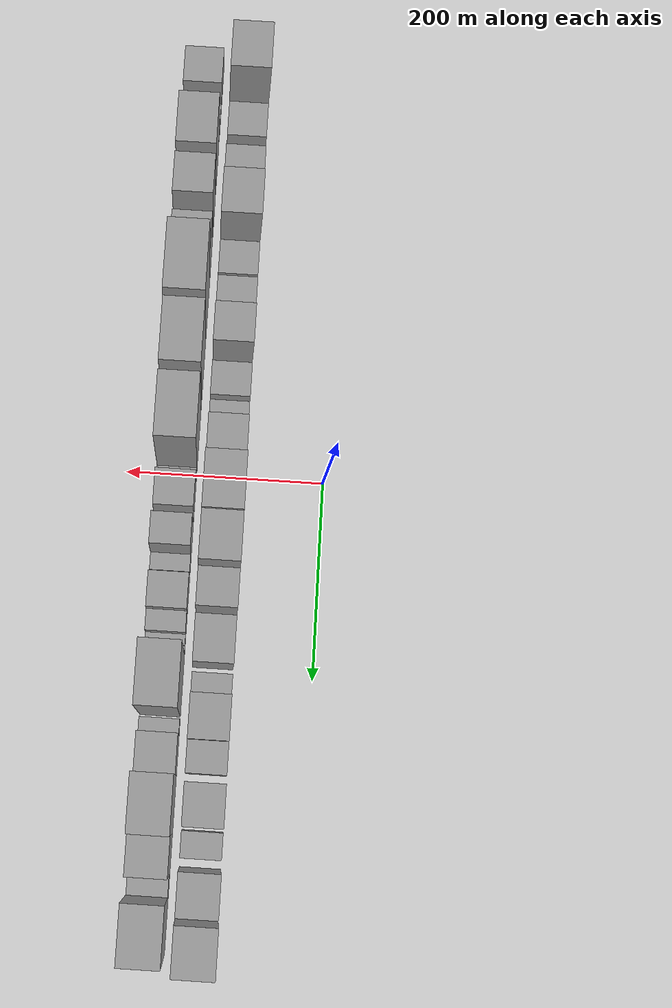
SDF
<sdf version="1.6">
 <world name="default">
  <scene>
   <sky><clouds><speed>12</speed></clouds></sky>
   <ambient>0.4 0.4 0.4 1</ambient>
   <background>0.7 0.7 0.7 1</background>
   <shadows>1</shadows>
  </scene>
  <gravity>0 0 -9.8066</gravity>
  <magnetic_field>6e-06 2.3e-05 -4.2e-05</magnetic_field>
  <physics default="0" name="default_physics" type="ode">
   <ode>
    <solver>
     <type>quick</type>
     <iters>10</iters>
     <sor>1.0</sor>
     <use_dynamic_moi_rescaling>0</use_dynamic_moi_rescaling>
    </solver>
    <constraints>
     <cfm>0</cfm>
     <erp>0.2</erp>
     <contact_max_correcting_vel>100</contact_max_correcting_vel>
     <contact_surface_layer>0.001</contact_surface_layer>
    </constraints>
   </ode>
   <max_step_size>0.004</max_step_size>
   <real_time_factor>1</real_time_factor>
   <real_time_update_rate>250</real_time_update_rate>
  </physics>
  <light name="sun" type="directional">
   <pose>0 0 10 0 0 0</pose>
   <diffuse>0.8 0.8 0.8 1</diffuse>
   <specular>0.2 0.2 0.2 1</specular>
   <attenuation>
    <range>1000</range>
    <constant>0.9</constant>
    <linear>0.01</linear>
    <quadratic>0.001</quadratic>
   </attenuation>
   <direction>-0.5 0.1 -0.9</direction>
  </light>
  <model name="building_1">
   <static>1</static>
   <pose>100.0000 -433.0346 0 0.000000 0.000000 0.000000</pose>
   <link name="link">
    <pose>0 0 12.00 0 0 0</pose>
    <collision name="collision"><geometry><box><size>40.0000 9.9308 24.0000</size></box></geometry></collision>
    <visual name="visual">
     <cast_shadows>0</cast_shadows>
     <geometry><box><size>40.0000 9.9308 24.0000</size></box></geometry>
     <material>
      <script>
       <uri>model://grey_wall/materials/scripts</uri>
       <uri>model://grey_wall/materials/textures</uri>
       <name>vrc/grey_wall</name>
      </script>
     </material>
    </visual>
   </link>
  </model>
  <model name="building_2">
   <static>1</static>
   <pose>100.0000 -404.1415 0 0.000000 0.000000 0.000000</pose>
   <link name="link">
    <pose>0 0 75.00 0 0 0</pose>
    <collision name="collision"><geometry><box><size>40.0000 47.8553 150.0000</size></box></geometry></collision>
    <visual name="visual">
     <cast_shadows>0</cast_shadows>
     <geometry><box><size>40.0000 47.8553 150.0000</size></box></geometry>
     <material>
      <script>
       <uri>model://grey_wall/materials/scripts</uri>
       <uri>model://grey_wall/materials/textures</uri>
       <name>vrc/grey_wall</name>
      </script>
     </material>
    </visual>
   </link>
  </model>
  <model name="building_3">
   <static>1</static>
   <pose>100.0000 -361.9677 0 0.000000 0.000000 0.000000</pose>
   <link name="link">
    <pose>0 0 33.00 0 0 0</pose>
    <collision name="collision"><geometry><box><size>40.0000 36.4923 66.0000</size></box></geometry></collision>
    <visual name="visual">
     <cast_shadows>0</cast_shadows>
     <geometry><box><size>40.0000 36.4923 66.0000</size></box></geometry>
     <material>
      <script>
       <uri>model://grey_wall/materials/scripts</uri>
       <uri>model://grey_wall/materials/textures</uri>
       <name>vrc/grey_wall</name>
      </script>
     </material>
    </visual>
   </link>
  </model>
  <model name="building_4">
   <static>1</static>
   <pose>100.0000 -333.9578 0 0.000000 0.000000 0.000000</pose>
   <link name="link">
    <pose>0 0 16.50 0 0 0</pose>
    <collision name="collision"><geometry><box><size>40.0000 19.5276 33.0000</size></box></geometry></collision>
    <visual name="visual">
     <cast_shadows>0</cast_shadows>
     <geometry><box><size>40.0000 19.5276 33.0000</size></box></geometry>
     <material>
      <script>
       <uri>model://grey_wall/materials/scripts</uri>
       <uri>model://grey_wall/materials/textures</uri>
       <name>vrc/grey_wall</name>
      </script>
     </material>
    </visual>
   </link>
  </model>
  <model name="building_5">
   <static>1</static>
   <pose>100.0000 -301.4656 0 0.000000 0.000000 0.000000</pose>
   <link name="link">
    <pose>0 0 45.00 0 0 0</pose>
    <collision name="collision"><geometry><box><size>40.0000 45.4568 90.0000</size></box></geometry></collision>
    <visual name="visual">
     <cast_shadows>0</cast_shadows>
     <geometry><box><size>40.0000 45.4568 90.0000</size></box></geometry>
     <material>
      <script>
       <uri>model://grey_wall/materials/scripts</uri>
       <uri>model://grey_wall/materials/textures</uri>
       <name>vrc/grey_wall</name>
      </script>
     </material>
    </visual>
   </link>
  </model>
  <model name="building_6">
   <static>1</static>
   <pose>100.0000 -255.7578 0 0.000000 0.000000 0.000000</pose>
   <link name="link">
    <pose>0 0 72.00 0 0 0</pose>
    <collision name="collision"><geometry><box><size>40.0000 45.9587 144.0000</size></box></geometry></collision>
    <visual name="visual">
     <cast_shadows>0</cast_shadows>
     <geometry><box><size>40.0000 45.9587 144.0000</size></box></geometry>
     <material>
      <script>
       <uri>model://grey_wall/materials/scripts</uri>
       <uri>model://grey_wall/materials/textures</uri>
       <name>vrc/grey_wall</name>
      </script>
     </material>
    </visual>
   </link>
  </model>
  <model name="building_7">
   <static>1</static>
   <pose>100.0000 -215.1899 0 0.000000 0.000000 0.000000</pose>
   <link name="link">
    <pose>0 0 31.50 0 0 0</pose>
    <collision name="collision"><geometry><box><size>40.0000 35.1772 63.0000</size></box></geometry></collision>
    <visual name="visual">
     <cast_shadows>0</cast_shadows>
     <geometry><box><size>40.0000 35.1772 63.0000</size></box></geometry>
     <material>
      <script>
       <uri>model://grey_wall/materials/scripts</uri>
       <uri>model://grey_wall/materials/textures</uri>
       <name>vrc/grey_wall</name>
      </script>
     </material>
    </visual>
   </link>
  </model>
  <model name="building_8">
   <static>1</static>
   <pose>100.0000 -172.8074 0 0.000000 0.000000 0.000000</pose>
   <link name="link">
    <pose>0 0 36.00 0 0 0</pose>
    <collision name="collision"><geometry><box><size>40.0000 39.5879 72.0000</size></box></geometry></collision>
    <visual name="visual">
     <cast_shadows>0</cast_shadows>
     <geometry><box><size>40.0000 39.5879 72.0000</size></box></geometry>
     <material>
      <script>
       <uri>model://grey_wall/materials/scripts</uri>
       <uri>model://grey_wall/materials/textures</uri>
       <name>vrc/grey_wall</name>
      </script>
     </material>
    </visual>
   </link>
  </model>
  <model name="building_9">
   <static>1</static>
   <pose>100.0000 -133.2772 0 0.000000 0.000000 0.000000</pose>
   <link name="link">
    <pose>0 0 57.00 0 0 0</pose>
    <collision name="collision"><geometry><box><size>40.0000 39.4723 114.0000</size></box></geometry></collision>
    <visual name="visual">
     <cast_shadows>0</cast_shadows>
     <geometry><box><size>40.0000 39.4723 114.0000</size></box></geometry>
     <material>
      <script>
       <uri>model://grey_wall/materials/scripts</uri>
       <uri>model://grey_wall/materials/textures</uri>
       <name>vrc/grey_wall</name>
      </script>
     </material>
    </visual>
   </link>
  </model>
  <model name="building_10">
   <static>1</static>
   <pose>100.0000 -90.0790 0 0.000000 0.000000 0.000000</pose>
   <link name="link">
    <pose>0 0 30.00 0 0 0</pose>
    <collision name="collision"><geometry><box><size>40.0000 34.9241 60.0000</size></box></geometry></collision>
    <visual name="visual">
     <cast_shadows>0</cast_shadows>
     <geometry><box><size>40.0000 34.9241 60.0000</size></box></geometry>
     <material>
      <script>
       <uri>model://grey_wall/materials/scripts</uri>
       <uri>model://grey_wall/materials/textures</uri>
       <name>vrc/grey_wall</name>
      </script>
     </material>
    </visual>
   </link>
  </model>
  <model name="building_11">
   <static>1</static>
   <pose>100.0000 -62.3041 0 0.000000 0.000000 0.000000</pose>
   <link name="link">
    <pose>0 0 19.50 0 0 0</pose>
    <collision name="collision"><geometry><box><size>40.0000 20.6258 39.0000</size></box></geometry></collision>
    <visual name="visual">
     <cast_shadows>0</cast_shadows>
     <geometry><box><size>40.0000 20.6258 39.0000</size></box></geometry>
     <material>
      <script>
       <uri>model://grey_wall/materials/scripts</uri>
       <uri>model://grey_wall/materials/textures</uri>
       <name>vrc/grey_wall</name>
      </script>
     </material>
    </visual>
   </link>
  </model>
  <model name="building_12">
   <static>1</static>
   <pose>100.0000 -24.7846 0 0.000000 0.000000 0.000000</pose>
   <link name="link">
    <pose>0 0 42.00 0 0 0</pose>
    <collision name="collision"><geometry><box><size>40.0000 48.4131 84.0000</size></box></geometry></collision>
    <visual name="visual">
     <cast_shadows>0</cast_shadows>
     <geometry><box><size>40.0000 48.4131 84.0000</size></box></geometry>
     <material>
      <script>
       <uri>model://grey_wall/materials/scripts</uri>
       <uri>model://grey_wall/materials/textures</uri>
       <name>vrc/grey_wall</name>
      </script>
     </material>
    </visual>
   </link>
  </model>
  <model name="building_13">
   <static>1</static>
   <pose>100.0000 27.5827 0 0.000000 0.000000 0.000000</pose>
   <link name="link">
    <pose>0 0 72.00 0 0 0</pose>
    <collision name="collision"><geometry><box><size>40.0000 56.3216 144.0000</size></box></geometry></collision>
    <visual name="visual">
     <cast_shadows>0</cast_shadows>
     <geometry><box><size>40.0000 56.3216 144.0000</size></box></geometry>
     <material>
      <script>
       <uri>model://grey_wall/materials/scripts</uri>
       <uri>model://grey_wall/materials/textures</uri>
       <name>vrc/grey_wall</name>
      </script>
     </material>
    </visual>
   </link>
  </model>
  <model name="building_14">
   <static>1</static>
   <pose>100.0000 79.7308 0 0.000000 0.000000 0.000000</pose>
   <link name="link">
    <pose>0 0 69.00 0 0 0</pose>
    <collision name="collision"><geometry><box><size>40.0000 47.9747 138.0000</size></box></geometry></collision>
    <visual name="visual">
     <cast_shadows>0</cast_shadows>
     <geometry><box><size>40.0000 47.9747 138.0000</size></box></geometry>
     <material>
      <script>
       <uri>model://grey_wall/materials/scripts</uri>
       <uri>model://grey_wall/materials/textures</uri>
       <name>vrc/grey_wall</name>
      </script>
     </material>
    </visual>
   </link>
  </model>
  <model name="building_15">
   <static>1</static>
   <pose>100.0000 125.5755 0 0.000000 0.000000 0.000000</pose>
   <link name="link">
    <pose>0 0 57.00 0 0 0</pose>
    <collision name="collision"><geometry><box><size>40.0000 37.7146 114.0000</size></box></geometry></collision>
    <visual name="visual">
     <cast_shadows>0</cast_shadows>
     <geometry><box><size>40.0000 37.7146 114.0000</size></box></geometry>
     <material>
      <script>
       <uri>model://grey_wall/materials/scripts</uri>
       <uri>model://grey_wall/materials/textures</uri>
       <name>vrc/grey_wall</name>
      </script>
     </material>
    </visual>
   </link>
  </model>
  <model name="building_16">
   <static>1</static>
   <pose>100.0000 170.7817 0 0.000000 0.000000 0.000000</pose>
   <link name="link">
    <pose>0 0 39.00 0 0 0</pose>
    <collision name="collision"><geometry><box><size>40.0000 46.6979 78.0000</size></box></geometry></collision>
    <visual name="visual">
     <cast_shadows>0</cast_shadows>
     <geometry><box><size>40.0000 46.6979 78.0000</size></box></geometry>
     <material>
      <script>
       <uri>model://grey_wall/materials/scripts</uri>
       <uri>model://grey_wall/materials/textures</uri>
       <name>vrc/grey_wall</name>
      </script>
     </material>
    </visual>
   </link>
  </model>
  <model name="building_17">
   <static>1</static>
   <pose>100.0000 211.9710 0 0.000000 0.000000 0.000000</pose>
   <link name="link">
    <pose>0 0 19.50 0 0 0</pose>
    <collision name="collision"><geometry><box><size>40.0000 21.6807 39.0000</size></box></geometry></collision>
    <visual name="visual">
     <cast_shadows>0</cast_shadows>
     <geometry><box><size>40.0000 21.6807 39.0000</size></box></geometry>
     <material>
      <script>
       <uri>model://grey_wall/materials/scripts</uri>
       <uri>model://grey_wall/materials/textures</uri>
       <name>vrc/grey_wall</name>
      </script>
     </material>
    </visual>
   </link>
  </model>
  <model name="building_18">
   <static>1</static>
   <pose>100.0000 244.9832 0 0.000000 0.000000 0.000000</pose>
   <link name="link">
    <pose>0 0 37.50 0 0 0</pose>
    <collision name="collision"><geometry><box><size>40.0000 44.3437 75.0000</size></box></geometry></collision>
    <visual name="visual">
     <cast_shadows>0</cast_shadows>
     <geometry><box><size>40.0000 44.3437 75.0000</size></box></geometry>
     <material>
      <script>
       <uri>model://grey_wall/materials/scripts</uri>
       <uri>model://grey_wall/materials/textures</uri>
       <name>vrc/grey_wall</name>
      </script>
     </material>
    </visual>
   </link>
  </model>
  <model name="building_19">
   <static>1</static>
   <pose>100.0000 283.1671 0 0.000000 0.000000 0.000000</pose>
   <link name="link">
    <pose>0 0 31.50 0 0 0</pose>
    <collision name="collision"><geometry><box><size>40.0000 32.0240 63.0000</size></box></geometry></collision>
    <visual name="visual">
     <cast_shadows>0</cast_shadows>
     <geometry><box><size>40.0000 32.0240 63.0000</size></box></geometry>
     <material>
      <script>
       <uri>model://grey_wall/materials/scripts</uri>
       <uri>model://grey_wall/materials/textures</uri>
       <name>vrc/grey_wall</name>
      </script>
     </material>
    </visual>
   </link>
  </model>
  <model name="building_20">
   <static>1</static>
   <pose>100.0000 328.1609 0 0.000000 0.000000 0.000000</pose>
   <link name="link">
    <pose>0 0 39.00 0 0 0</pose>
    <collision name="collision"><geometry><box><size>40.0000 41.9636 78.0000</size></box></geometry></collision>
    <visual name="visual">
     <cast_shadows>0</cast_shadows>
     <geometry><box><size>40.0000 41.9636 78.0000</size></box></geometry>
     <material>
      <script>
       <uri>model://grey_wall/materials/scripts</uri>
       <uri>model://grey_wall/materials/textures</uri>
       <name>vrc/grey_wall</name>
      </script>
     </material>
    </visual>
   </link>
  </model>
  <model name="building_21">
   <static>1</static>
   <pose>100.0000 365.9833 0 0.000000 0.000000 0.000000</pose>
   <link name="link">
    <pose>0 0 25.50 0 0 0</pose>
    <collision name="collision"><geometry><box><size>40.0000 25.6811 51.0000</size></box></geometry></collision>
    <visual name="visual">
     <cast_shadows>0</cast_shadows>
     <geometry><box><size>40.0000 25.6811 51.0000</size></box></geometry>
     <material>
      <script>
       <uri>model://grey_wall/materials/scripts</uri>
       <uri>model://grey_wall/materials/textures</uri>
       <name>vrc/grey_wall</name>
      </script>
     </material>
    </visual>
   </link>
  </model>
  <model name="building_22">
   <static>1</static>
   <pose>100.0000 409.6022 0 0.000000 0.000000 0.000000</pose>
   <link name="link">
    <pose>0 0 55.50 0 0 0</pose>
    <collision name="collision"><geometry><box><size>40.0000 41.5568 111.0000</size></box></geometry></collision>
    <visual name="visual">
     <cast_shadows>0</cast_shadows>
     <geometry><box><size>40.0000 41.5568 111.0000</size></box></geometry>
     <material>
      <script>
       <uri>model://grey_wall/materials/scripts</uri>
       <uri>model://grey_wall/materials/textures</uri>
       <name>vrc/grey_wall</name>
      </script>
     </material>
    </visual>
   </link>
  </model>
  <model name="building_23">
   <static>1</static>
   <pose>100.0000 456.4711 0 0.000000 0.000000 0.000000</pose>
   <link name="link">
    <pose>0 0 76.50 0 0 0</pose>
    <collision name="collision"><geometry><box><size>40.0000 46.1808 153.0000</size></box></geometry></collision>
    <visual name="visual">
     <cast_shadows>0</cast_shadows>
     <geometry><box><size>40.0000 46.1808 153.0000</size></box></geometry>
     <material>
      <script>
       <uri>model://grey_wall/materials/scripts</uri>
       <uri>model://grey_wall/materials/textures</uri>
       <name>vrc/grey_wall</name>
      </script>
     </material>
    </visual>
   </link>
  </model>
  <model name="building_24">
   <static>1</static>
   <pose>149.0000 -418.7362 0 0.000000 0.000000 0.000000</pose>
   <link name="link">
    <pose>0 0 33.00 0 0 0</pose>
    <collision name="collision"><geometry><box><size>40.0000 38.5275 66.0000</size></box></geometry></collision>
    <visual name="visual">
     <cast_shadows>0</cast_shadows>
     <geometry><box><size>40.0000 38.5275 66.0000</size></box></geometry>
     <material>
      <script>
       <uri>model://grey_wall/materials/scripts</uri>
       <uri>model://grey_wall/materials/textures</uri>
       <name>vrc/grey_wall</name>
      </script>
     </material>
    </visual>
   </link>
  </model>
  <model name="building_25">
   <static>1</static>
   <pose>149.0000 -388.7172 0 0.000000 0.000000 0.000000</pose>
   <link name="link">
    <pose>0 0 12.00 0 0 0</pose>
    <collision name="collision"><geometry><box><size>40.0000 11.5106 24.0000</size></box></geometry></collision>
    <visual name="visual">
     <cast_shadows>0</cast_shadows>
     <geometry><box><size>40.0000 11.5106 24.0000</size></box></geometry>
     <material>
      <script>
       <uri>model://grey_wall/materials/scripts</uri>
       <uri>model://grey_wall/materials/textures</uri>
       <name>vrc/grey_wall</name>
      </script>
     </material>
    </visual>
   </link>
  </model>
  <model name="building_26">
   <static>1</static>
   <pose>149.0000 -377.4819 0 0.000000 0.000000 0.000000</pose>
   <link name="link">
    <pose>0 0 12.00 0 0 0</pose>
    <collision name="collision"><geometry><box><size>40.0000 10.9600 24.0000</size></box></geometry></collision>
    <visual name="visual">
     <cast_shadows>0</cast_shadows>
     <geometry><box><size>40.0000 10.9600 24.0000</size></box></geometry>
     <material>
      <script>
       <uri>model://grey_wall/materials/scripts</uri>
       <uri>model://grey_wall/materials/textures</uri>
       <name>vrc/grey_wall</name>
      </script>
     </material>
    </visual>
   </link>
  </model>
  <model name="building_27">
   <static>1</static>
   <pose>149.0000 -367.1485 0 0.000000 0.000000 0.000000</pose>
   <link name="link">
    <pose>0 0 12.00 0 0 0</pose>
    <collision name="collision"><geometry><box><size>40.0000 9.7067 24.0000</size></box></geometry></collision>
    <visual name="visual">
     <cast_shadows>0</cast_shadows>
     <geometry><box><size>40.0000 9.7067 24.0000</size></box></geometry>
     <material>
      <script>
       <uri>model://grey_wall/materials/scripts</uri>
       <uri>model://grey_wall/materials/textures</uri>
       <name>vrc/grey_wall</name>
      </script>
     </material>
    </visual>
   </link>
  </model>
  <model name="building_28">
   <static>1</static>
   <pose>149.0000 -329.1059 0 0.000000 0.000000 0.000000</pose>
   <link name="link">
    <pose>0 0 70.50 0 0 0</pose>
    <collision name="collision"><geometry><box><size>40.0000 52.3786 141.0000</size></box></geometry></collision>
    <visual name="visual">
     <cast_shadows>0</cast_shadows>
     <geometry><box><size>40.0000 52.3786 141.0000</size></box></geometry>
     <material>
      <script>
       <uri>model://grey_wall/materials/scripts</uri>
       <uri>model://grey_wall/materials/textures</uri>
       <name>vrc/grey_wall</name>
      </script>
     </material>
    </visual>
   </link>
  </model>
  <model name="building_29">
   <static>1</static>
   <pose>149.0000 -274.6519 0 0.000000 0.000000 0.000000</pose>
   <link name="link">
    <pose>0 0 67.50 0 0 0</pose>
    <collision name="collision"><geometry><box><size>40.0000 40.5293 135.0000</size></box></geometry></collision>
    <visual name="visual">
     <cast_shadows>0</cast_shadows>
     <geometry><box><size>40.0000 40.5293 135.0000</size></box></geometry>
     <material>
      <script>
       <uri>model://grey_wall/materials/scripts</uri>
       <uri>model://grey_wall/materials/textures</uri>
       <name>vrc/grey_wall</name>
      </script>
     </material>
    </visual>
   </link>
  </model>
  <model name="building_30">
   <static>1</static>
   <pose>149.0000 -225.6728 0 0.000000 0.000000 0.000000</pose>
   <link name="link">
    <pose>0 0 54.00 0 0 0</pose>
    <collision name="collision"><geometry><box><size>40.0000 39.4289 108.0000</size></box></geometry></collision>
    <visual name="visual">
     <cast_shadows>0</cast_shadows>
     <geometry><box><size>40.0000 39.4289 108.0000</size></box></geometry>
     <material>
      <script>
       <uri>model://grey_wall/materials/scripts</uri>
       <uri>model://grey_wall/materials/textures</uri>
       <name>vrc/grey_wall</name>
      </script>
     </material>
    </visual>
   </link>
  </model>
  <model name="building_31">
   <static>1</static>
   <pose>149.0000 -171.6850 0 0.000000 0.000000 0.000000</pose>
   <link name="link">
    <pose>0 0 97.50 0 0 0</pose>
    <collision name="collision"><geometry><box><size>40.0000 68.5466 195.0000</size></box></geometry></collision>
    <visual name="visual">
     <cast_shadows>0</cast_shadows>
     <geometry><box><size>40.0000 68.5466 195.0000</size></box></geometry>
     <material>
      <script>
       <uri>model://grey_wall/materials/scripts</uri>
       <uri>model://grey_wall/materials/textures</uri>
       <name>vrc/grey_wall</name>
      </script>
     </material>
    </visual>
   </link>
  </model>
  <model name="building_32">
   <static>1</static>
   <pose>149.0000 -106.3353 0 0.000000 0.000000 0.000000</pose>
   <link name="link">
    <pose>0 0 85.50 0 0 0</pose>
    <collision name="collision"><geometry><box><size>40.0000 62.1528 171.0000</size></box></geometry></collision>
    <visual name="visual">
     <cast_shadows>0</cast_shadows>
     <geometry><box><size>40.0000 62.1528 171.0000</size></box></geometry>
     <material>
      <script>
       <uri>model://grey_wall/materials/scripts</uri>
       <uri>model://grey_wall/materials/textures</uri>
       <name>vrc/grey_wall</name>
      </script>
     </material>
    </visual>
   </link>
  </model>
  <model name="building_33">
   <static>1</static>
   <pose>149.0000 -71.5643 0 0.000000 0.000000 0.000000</pose>
   <link name="link">
    <pose>0 0 9.00 0 0 0</pose>
    <collision name="collision"><geometry><box><size>40.0000 7.3893 18.0000</size></box></geometry></collision>
    <visual name="visual">
     <cast_shadows>0</cast_shadows>
     <geometry><box><size>40.0000 7.3893 18.0000</size></box></geometry>
     <material>
      <script>
       <uri>model://grey_wall/materials/scripts</uri>
       <uri>model://grey_wall/materials/textures</uri>
       <name>vrc/grey_wall</name>
      </script>
     </material>
    </visual>
   </link>
  </model>
  <model name="building_34">
   <static>1</static>
   <pose>149.0000 -36.1397 0 0.000000 0.000000 0.000000</pose>
   <link name="link">
    <pose>0 0 82.50 0 0 0</pose>
    <collision name="collision"><geometry><box><size>40.0000 63.4598 165.0000</size></box></geometry></collision>
    <visual name="visual">
     <cast_shadows>0</cast_shadows>
     <geometry><box><size>40.0000 63.4598 165.0000</size></box></geometry>
     <material>
      <script>
       <uri>model://grey_wall/materials/scripts</uri>
       <uri>model://grey_wall/materials/textures</uri>
       <name>vrc/grey_wall</name>
      </script>
     </material>
    </visual>
   </link>
  </model>
  <model name="building_35">
   <static>1</static>
   <pose>149.0000 1.0643 0 0.000000 0.000000 0.000000</pose>
   <link name="link">
    <pose>0 0 12.00 0 0 0</pose>
    <collision name="collision"><geometry><box><size>40.0000 10.9481 24.0000</size></box></geometry></collision>
    <visual name="visual">
     <cast_shadows>0</cast_shadows>
     <geometry><box><size>40.0000 10.9481 24.0000</size></box></geometry>
     <material>
      <script>
       <uri>model://grey_wall/materials/scripts</uri>
       <uri>model://grey_wall/materials/textures</uri>
       <name>vrc/grey_wall</name>
      </script>
     </material>
    </visual>
   </link>
  </model>
  <model name="building_36">
   <static>1</static>
   <pose>149.0000 24.8346 0 0.000000 0.000000 0.000000</pose>
   <link name="link">
    <pose>0 0 34.50 0 0 0</pose>
    <collision name="collision"><geometry><box><size>40.0000 36.5925 69.0000</size></box></geometry></collision>
    <visual name="visual">
     <cast_shadows>0</cast_shadows>
     <geometry><box><size>40.0000 36.5925 69.0000</size></box></geometry>
     <material>
      <script>
       <uri>model://grey_wall/materials/scripts</uri>
       <uri>model://grey_wall/materials/textures</uri>
       <name>vrc/grey_wall</name>
      </script>
     </material>
    </visual>
   </link>
  </model>
  <model name="building_37">
   <static>1</static>
   <pose>149.0000 49.9843 0 0.000000 0.000000 0.000000</pose>
   <link name="link">
    <pose>0 0 9.00 0 0 0</pose>
    <collision name="collision"><geometry><box><size>40.0000 7.7069 18.0000</size></box></geometry></collision>
    <visual name="visual">
     <cast_shadows>0</cast_shadows>
     <geometry><box><size>40.0000 7.7069 18.0000</size></box></geometry>
     <material>
      <script>
       <uri>model://grey_wall/materials/scripts</uri>
       <uri>model://grey_wall/materials/textures</uri>
       <name>vrc/grey_wall</name>
      </script>
     </material>
    </visual>
   </link>
  </model>
  <model name="building_38">
   <static>1</static>
   <pose>149.0000 69.5499 0 0.000000 0.000000 0.000000</pose>
   <link name="link">
    <pose>0 0 46.50 0 0 0</pose>
    <collision name="collision"><geometry><box><size>40.0000 31.4244 93.0000</size></box></geometry></collision>
    <visual name="visual">
     <cast_shadows>0</cast_shadows>
     <geometry><box><size>40.0000 31.4244 93.0000</size></box></geometry>
     <material>
      <script>
       <uri>model://grey_wall/materials/scripts</uri>
       <uri>model://grey_wall/materials/textures</uri>
       <name>vrc/grey_wall</name>
      </script>
     </material>
    </visual>
   </link>
  </model>
  <model name="building_39">
   <static>1</static>
   <pose>149.0000 94.0365 0 0.000000 0.000000 0.000000</pose>
   <link name="link">
    <pose>0 0 16.50 0 0 0</pose>
    <collision name="collision"><geometry><box><size>40.0000 17.5487 33.0000</size></box></geometry></collision>
    <visual name="visual">
     <cast_shadows>0</cast_shadows>
     <geometry><box><size>40.0000 17.5487 33.0000</size></box></geometry>
     <material>
      <script>
       <uri>model://grey_wall/materials/scripts</uri>
       <uri>model://grey_wall/materials/textures</uri>
       <name>vrc/grey_wall</name>
      </script>
     </material>
    </visual>
   </link>
  </model>
  <model name="building_40">
   <static>1</static>
   <pose>149.0000 124.6785 0 0.000000 0.000000 0.000000</pose>
   <link name="link">
    <pose>0 0 30.00 0 0 0</pose>
    <collision name="collision"><geometry><box><size>40.0000 35.7354 60.0000</size></box></geometry></collision>
    <visual name="visual">
     <cast_shadows>0</cast_shadows>
     <geometry><box><size>40.0000 35.7354 60.0000</size></box></geometry>
     <material>
      <script>
       <uri>model://grey_wall/materials/scripts</uri>
       <uri>model://grey_wall/materials/textures</uri>
       <name>vrc/grey_wall</name>
      </script>
     </material>
    </visual>
   </link>
  </model>
  <model name="building_41">
   <static>1</static>
   <pose>149.0000 153.1768 0 0.000000 0.000000 0.000000</pose>
   <link name="link">
    <pose>0 0 21.00 0 0 0</pose>
    <collision name="collision"><geometry><box><size>40.0000 21.2614 42.0000</size></box></geometry></collision>
    <visual name="visual">
     <cast_shadows>0</cast_shadows>
     <geometry><box><size>40.0000 21.2614 42.0000</size></box></geometry>
     <material>
      <script>
       <uri>model://grey_wall/materials/scripts</uri>
       <uri>model://grey_wall/materials/textures</uri>
       <name>vrc/grey_wall</name>
      </script>
     </material>
    </visual>
   </link>
  </model>
  <model name="building_42">
   <static>1</static>
   <pose>149.0000 169.4975 0 0.000000 0.000000 0.000000</pose>
   <link name="link">
    <pose>0 0 12.00 0 0 0</pose>
    <collision name="collision"><geometry><box><size>40.0000 11.3800 24.0000</size></box></geometry></collision>
    <visual name="visual">
     <cast_shadows>0</cast_shadows>
     <geometry><box><size>40.0000 11.3800 24.0000</size></box></geometry>
     <material>
      <script>
       <uri>model://grey_wall/materials/scripts</uri>
       <uri>model://grey_wall/materials/textures</uri>
       <name>vrc/grey_wall</name>
      </script>
     </material>
    </visual>
   </link>
  </model>
  <model name="building_43">
   <static>1</static>
   <pose>149.0000 179.4573 0 0.000000 0.000000 0.000000</pose>
   <link name="link">
    <pose>0 0 9.00 0 0 0</pose>
    <collision name="collision"><geometry><box><size>40.0000 8.5397 18.0000</size></box></geometry></collision>
    <visual name="visual">
     <cast_shadows>0</cast_shadows>
     <geometry><box><size>40.0000 8.5397 18.0000</size></box></geometry>
     <material>
      <script>
       <uri>model://grey_wall/materials/scripts</uri>
       <uri>model://grey_wall/materials/textures</uri>
       <name>vrc/grey_wall</name>
      </script>
     </material>
    </visual>
   </link>
  </model>
  <model name="building_44">
   <static>1</static>
   <pose>149.0000 214.0059 0 0.000000 0.000000 0.000000</pose>
   <link name="link">
    <pose>0 0 90.00 0 0 0</pose>
    <collision name="collision"><geometry><box><size>40.0000 60.5575 180.0000</size></box></geometry></collision>
    <visual name="visual">
     <cast_shadows>0</cast_shadows>
     <geometry><box><size>40.0000 60.5575 180.0000</size></box></geometry>
     <material>
      <script>
       <uri>model://grey_wall/materials/scripts</uri>
       <uri>model://grey_wall/materials/textures</uri>
       <name>vrc/grey_wall</name>
      </script>
     </material>
    </visual>
   </link>
  </model>
  <model name="building_45">
   <static>1</static>
   <pose>149.0000 254.9012 0 0.000000 0.000000 0.000000</pose>
   <link name="link">
    <pose>0 0 15.00 0 0 0</pose>
    <collision name="collision"><geometry><box><size>40.0000 15.2331 30.0000</size></box></geometry></collision>
    <visual name="visual">
     <cast_shadows>0</cast_shadows>
     <geometry><box><size>40.0000 15.2331 30.0000</size></box></geometry>
     <material>
      <script>
       <uri>model://grey_wall/materials/scripts</uri>
       <uri>model://grey_wall/materials/textures</uri>
       <name>vrc/grey_wall</name>
      </script>
     </material>
    </visual>
   </link>
  </model>
  <model name="building_46">
   <static>1</static>
   <pose>149.0000 282.0703 0 0.000000 0.000000 0.000000</pose>
   <link name="link">
    <pose>0 0 37.50 0 0 0</pose>
    <collision name="collision"><geometry><box><size>40.0000 39.1051 75.0000</size></box></geometry></collision>
    <visual name="visual">
     <cast_shadows>0</cast_shadows>
     <geometry><box><size>40.0000 39.1051 75.0000</size></box></geometry>
     <material>
      <script>
       <uri>model://grey_wall/materials/scripts</uri>
       <uri>model://grey_wall/materials/textures</uri>
       <name>vrc/grey_wall</name>
      </script>
     </material>
    </visual>
   </link>
  </model>
  <model name="building_47">
   <static>1</static>
   <pose>149.0000 329.5947 0 0.000000 0.000000 0.000000</pose>
   <link name="link">
    <pose>0 0 72.00 0 0 0</pose>
    <collision name="collision"><geometry><box><size>40.0000 55.9437 144.0000</size></box></geometry></collision>
    <visual name="visual">
     <cast_shadows>0</cast_shadows>
     <geometry><box><size>40.0000 55.9437 144.0000</size></box></geometry>
     <material>
      <script>
       <uri>model://grey_wall/materials/scripts</uri>
       <uri>model://grey_wall/materials/textures</uri>
       <name>vrc/grey_wall</name>
      </script>
     </material>
    </visual>
   </link>
  </model>
  <model name="building_48">
   <static>1</static>
   <pose>149.0000 377.0680 0 0.000000 0.000000 0.000000</pose>
   <link name="link">
    <pose>0 0 57.00 0 0 0</pose>
    <collision name="collision"><geometry><box><size>40.0000 39.0031 114.0000</size></box></geometry></collision>
    <visual name="visual">
     <cast_shadows>0</cast_shadows>
     <geometry><box><size>40.0000 39.0031 114.0000</size></box></geometry>
     <material>
      <script>
       <uri>model://grey_wall/materials/scripts</uri>
       <uri>model://grey_wall/materials/textures</uri>
       <name>vrc/grey_wall</name>
      </script>
     </material>
    </visual>
   </link>
  </model>
  <model name="building_49">
   <static>1</static>
   <pose>149.0000 406.8442 0 0.000000 0.000000 0.000000</pose>
   <link name="link">
    <pose>0 0 18.00 0 0 0</pose>
    <collision name="collision"><geometry><box><size>40.0000 20.5492 36.0000</size></box></geometry></collision>
    <visual name="visual">
     <cast_shadows>0</cast_shadows>
     <geometry><box><size>40.0000 20.5492 36.0000</size></box></geometry>
     <material>
      <script>
       <uri>model://grey_wall/materials/scripts</uri>
       <uri>model://grey_wall/materials/textures</uri>
       <name>vrc/grey_wall</name>
      </script>
     </material>
    </visual>
   </link>
  </model>
  <model name="building_50">
   <static>1</static>
   <pose>149.0000 444.9952 0 0.000000 0.000000 0.000000</pose>
   <link name="link">
    <pose>0 0 78.00 0 0 0</pose>
    <collision name="collision"><geometry><box><size>40.0000 55.7529 156.0000</size></box></geometry></collision>
    <visual name="visual">
     <cast_shadows>0</cast_shadows>
     <geometry><box><size>40.0000 55.7529 156.0000</size></box></geometry>
     <material>
      <script>
       <uri>model://grey_wall/materials/scripts</uri>
       <uri>model://grey_wall/materials/textures</uri>
       <name>vrc/grey_wall</name>
      </script>
     </material>
    </visual>
   </link>
  </model>
 </world>
</sdf>
